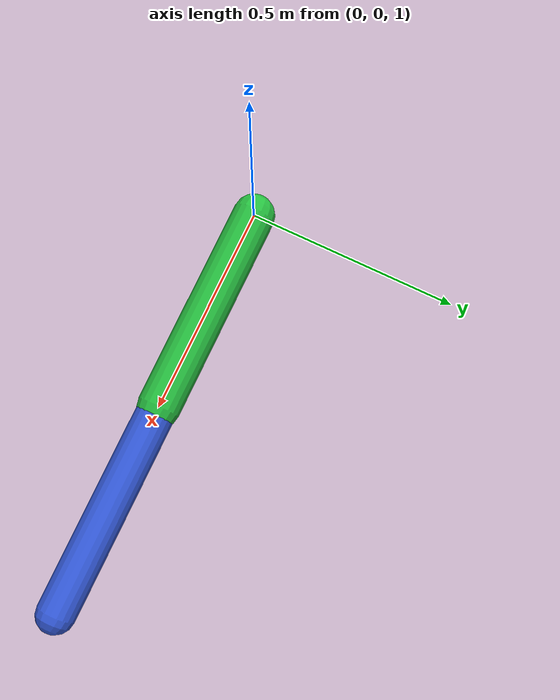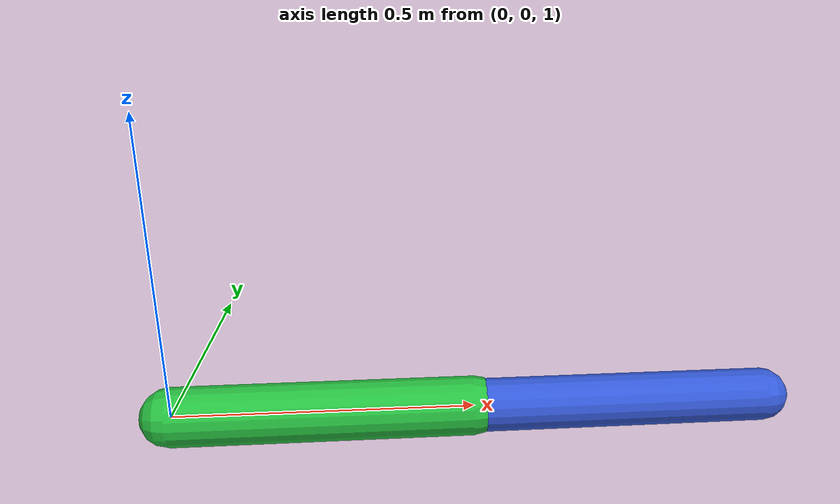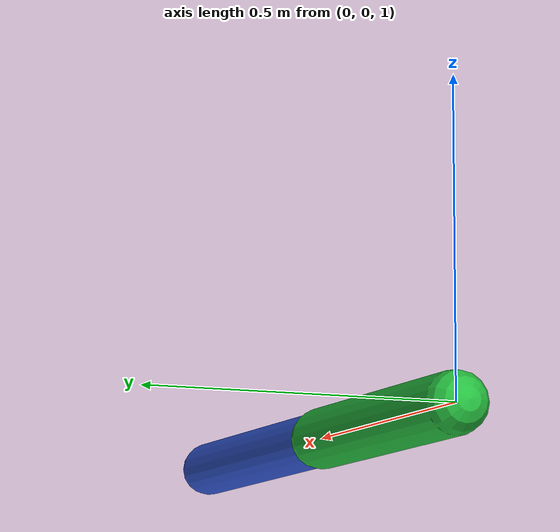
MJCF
<mujoco model="twin-balancer">
  <option integrator="RK4" timestep="0.0005" iterations="50" solver="Newton"/>
  <worldbody>
    <light pos="0 0 4"/>
    <body name="pivot" pos="0 0 1">
      <joint name="th1" type="hinge" axis="0 1 0" pos="0 0 0"/>
      <geom name="arm1" type="capsule" fromto="0 0 0 0.5 0 0" size="0.05" rgba="0.15 0.75 0.25 1"/>
      <body name="elbow" pos="0.5 0 0">
        <joint name="th2" type="hinge" axis="0 1 0"/>
        <geom name="arm2" type="capsule" fromto="0 0 0 0.5 0 0" size="0.045" rgba="0.2 0.35 0.85 1"/>
        <site name="tip" pos="0.5 0 0"/>
      </body>
    </body>
  </worldbody>
</mujoco>
